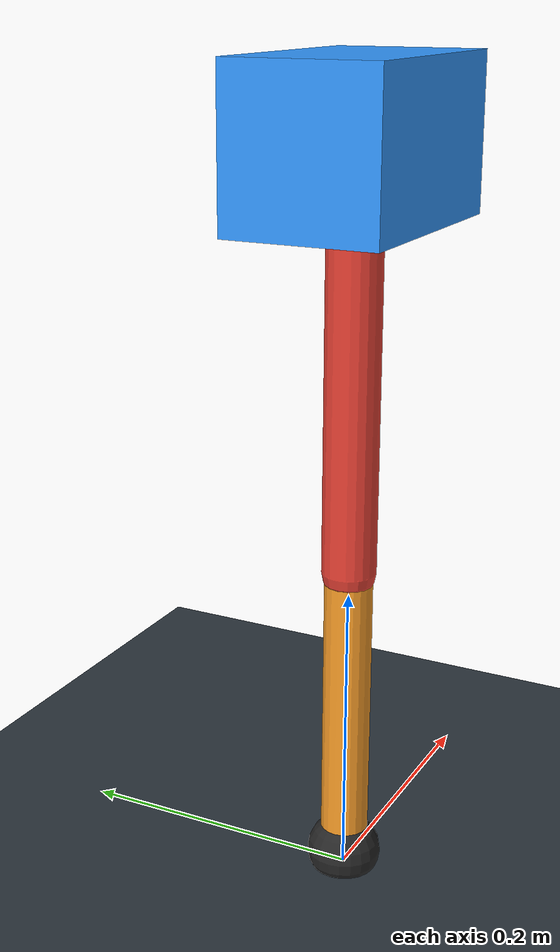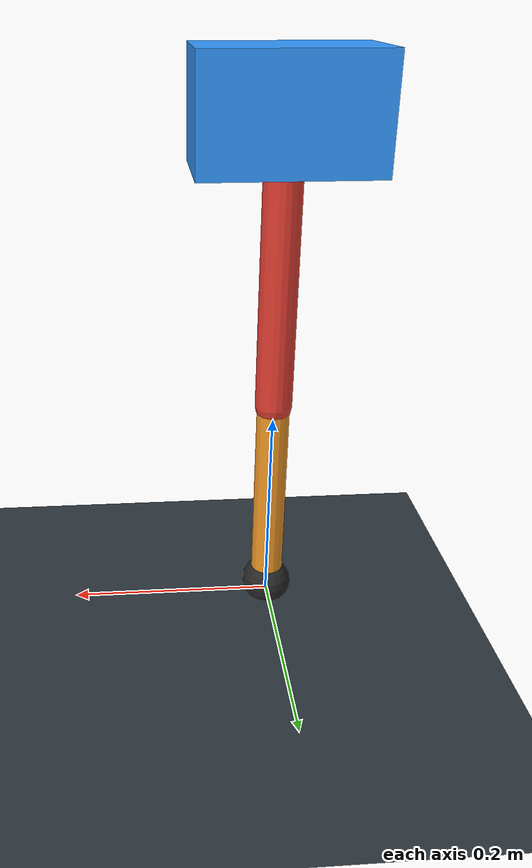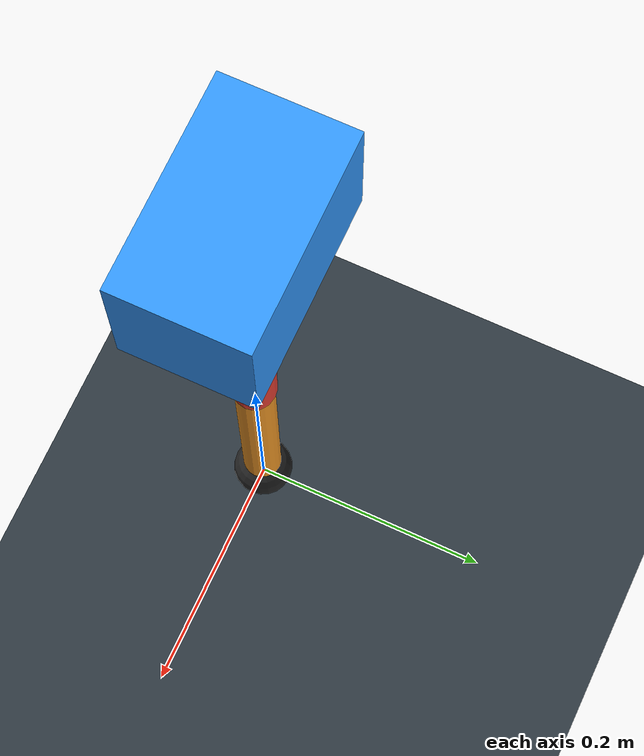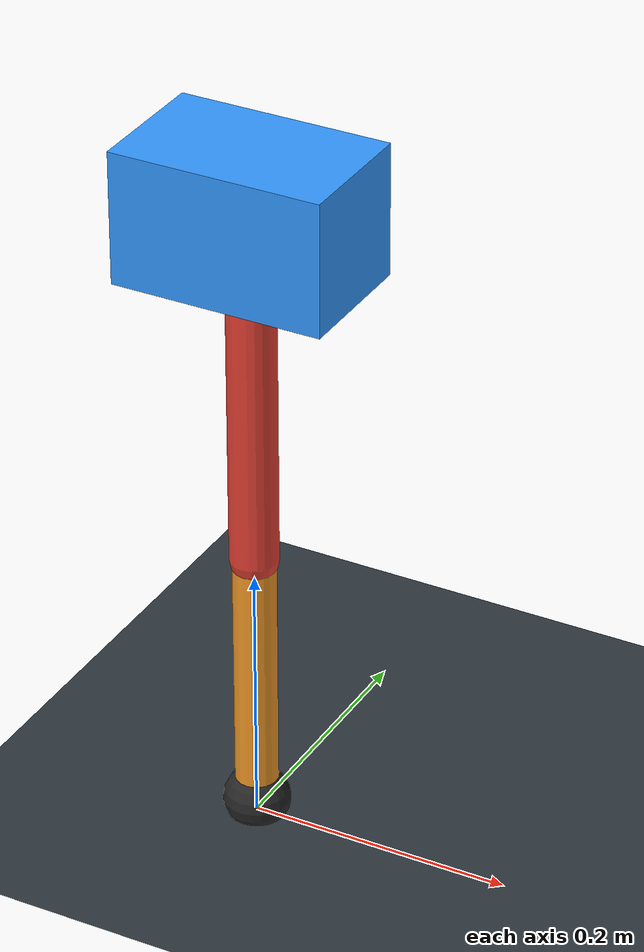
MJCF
<mujoco model="single_axis_two_bar">
  <compiler angle="radian" inertiafromgeom="true"/>
  <option timestep="0.001" integrator="implicitfast" gravity="0 0 -9.81"/>
  <default>
    <joint damping="0.08"/>
    <geom friction="1.2 0.01 0.0001" condim="3"/>
  </default>
  <worldbody>
    <geom name="floor" type="plane" size="5 5 0.1" rgba="0.18 0.22 0.25 1"/>
    <body name="carriage" pos="0 0 0.49054246709028054">
      <joint name="pole_slide" type="slide" axis="0 0 1"/>
      <geom name="payload" type="box" size="0.08 0.05 0.05" mass="2.421159966572711" rgba="0.2 0.6 1 1"/>
      <body name="thigh" pos="0 0 0">
        <joint name="hip" type="hinge" axis="0 1 0"/>
        <geom name="thigh_link" type="capsule" fromto="0 0 0 0 0 -0.27396677015055243" size="0.018" mass="0.1952049438837361" rgba="0.9 0.25 0.2 1"/>
        <body name="shank" pos="0 0 -0.27396677015055243">
          <joint name="knee" type="hinge" axis="0 1 0"/>
          <geom name="shank_link" type="capsule" fromto="0 0 0 0 0 -0.20597391757138628" size="0.016" mass="0.14675913797480183" rgba="0.95 0.6 0.15 1"/>
          <geom name="foot" type="sphere" pos="0 0 -0.20597391757138628" size="0.025" mass="0.03" rgba="0.15 0.15 0.15 1"/>
          <site name="toe" pos="0 0 -0.20597391757138628" size="0.008"/>
        </body>
      </body>
    </body>
  </worldbody>
  <actuator>
    <motor name="hip_motor" joint="hip" ctrlrange="-26.005829085062125 26.005829085062125"/>
    <motor name="knee_motor" joint="knee" ctrlrange="-70.70941684460608 70.70941684460608"/>
  </actuator>
</mujoco>
